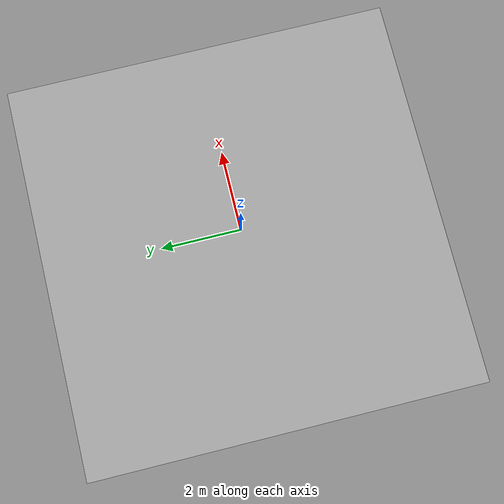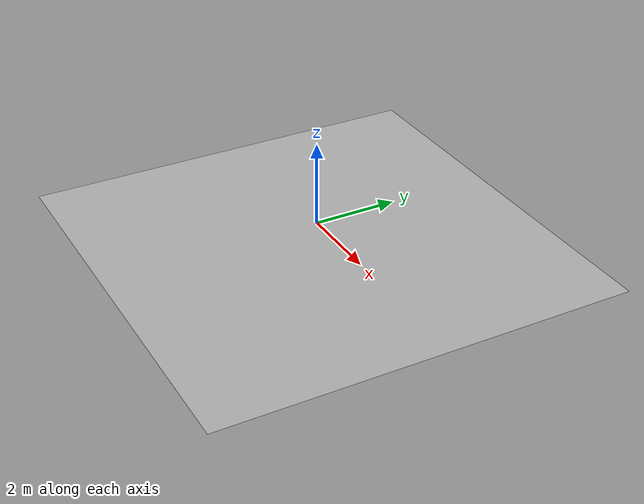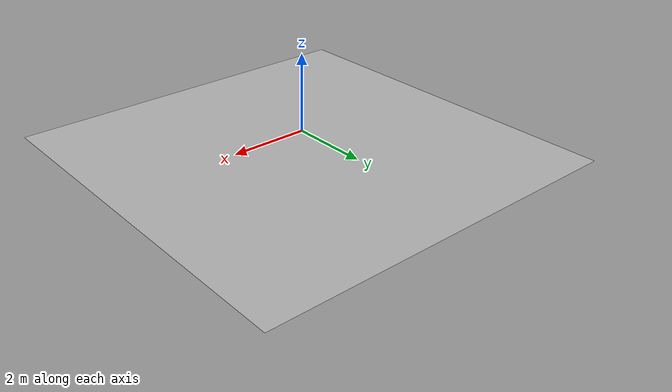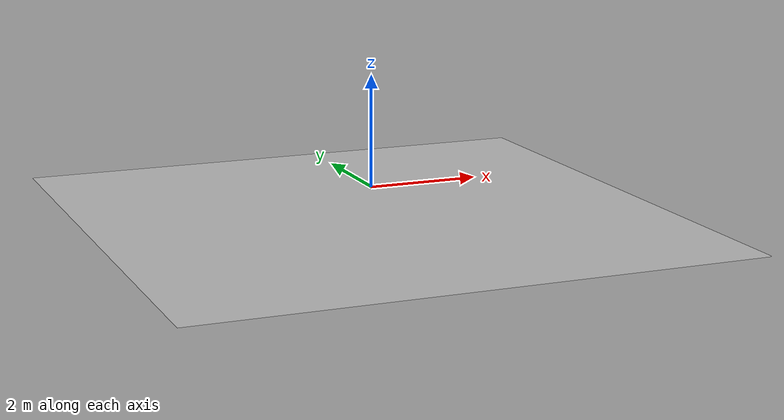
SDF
<?xml version="1.0"?>
<sdf version="1.4">
  <model name="plane">
      <static>true</static>

      <link name="plane">
        <inertial>
            <mass>2.1</mass>
            <inertia> <ixx>1.0</ixx> <ixy>0</ixy> <ixz>0</ixz> <iyy>1.0</iyy> <iyz>0</iyz> <izz>1.0</izz></inertia>
        </inertial>
        <visual name="vis">
            <pose>0 0 -0.5 0 0 0</pose>
            <geometry><box><size>10.0 10.0 0.01</size></box></geometry>
            <material>
                <diffuse>1 1 1 0.25</diffuse>
            </material>
        </visual>
        <collision name="col">
            <pose> 0 0 -0.5 0 0 0 </pose>
            <geometry><box><size>10.0 10.0 0.01</size></box></geometry>
        </collision>
        </link>
  </model>
</sdf>
